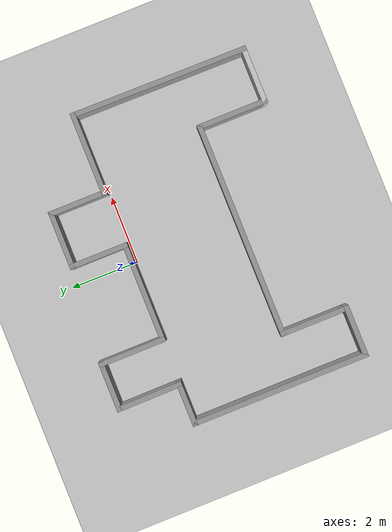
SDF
<sdf version="1.7">
 <world name="default">
  <light name="sun" type="directional">
   <pose>0 0 10 0 -0 0</pose>
   <diffuse>0.8 0.8 0.8 1</diffuse>
   <specular>0.2 0.2 0.2 1</specular>
   <attenuation>
    <range>1000</range>
    <constant>0.9</constant>
    <linear>0.01</linear>
    <quadratic>0.001</quadratic>
   </attenuation>
   <direction>-0.5 0.1 -0.9</direction>
   <spot><inner_angle>0</inner_angle><outer_angle>0</outer_angle><falloff>0</falloff></spot>
  </light>
  <model name="ground_plane">
   <static>1</static>
   <link name="link">
    <collision name="collision">
     <geometry><plane><normal>0 0 1</normal><size>100 100</size></plane></geometry>
     <surface>
      <contact><collide_bitmask>65535</collide_bitmask></contact>
      <friction><ode><mu>100</mu><mu2>50</mu2></ode></friction>
     </surface>
    </collision>
    <visual name="visual">
     <cast_shadows>0</cast_shadows>
     <geometry><plane><normal>0 0 1</normal><size>100 100</size></plane></geometry>
     <material>
      <script><uri>file://media/materials/scripts/gazebo.material</uri><name>Gazebo/Grey</name></script>
     </material>
    </visual>
   </link>
  </model>
  <gravity>0 0 -9.8</gravity>
  <magnetic_field>6e-06 2.3e-05 -4.2e-05</magnetic_field>
  <atmosphere type="adiabatic"/>
  <physics type="ode">
   <max_step_size>0.001</max_step_size>
   <real_time_factor>1</real_time_factor>
   <real_time_update_rate>1000</real_time_update_rate>
  </physics>
  <scene><ambient>0.4 0.4 0.4 1</ambient><background>0.7 0.7 0.7 1</background><shadows>1</shadows></scene>
  <spherical_coordinates>
   <surface_model>EARTH_WGS84</surface_model>
   <latitude_deg>0</latitude_deg>
   <longitude_deg>0</longitude_deg>
   <elevation>0</elevation>
   <heading_deg>0</heading_deg>
  </spherical_coordinates>
  <model name="hall_wide">
   <pose>-0.144197 -1.56134 0 0 -0 0</pose>
   <link name="Wall_0">
    <collision name="Wall_0_Collision">
     <geometry><box><size>1.32 0.15 0.5</size></box></geometry>
     <pose>0 0 0.25 0 -0 0</pose>
    </collision>
    <visual name="Wall_0_Visual">
     <pose>0 0 0.25 0 -0 0</pose>
     <geometry><box><size>1.32 0.15 0.5</size></box></geometry>
     <material>
      <script><uri>file://media/materials/scripts/gazebo.material</uri><name>Gazebo/Grey</name></script>
      <ambient>1 1 1 1</ambient>
     </material>
     <meta><layer>0</layer></meta>
    </visual>
    <pose>-4.0708 1.69334 0 0 -0 0</pose>
   </link>
   <link name="Wall_1">
    <collision name="Wall_1_Collision">
     <geometry><box><size>1.96502 0.15 0.5</size></box></geometry>
     <pose>0 0 0.25 0 -0 0</pose>
    </collision>
    <visual name="Wall_1_Visual">
     <pose>0 0 0.25 0 -0 0</pose>
     <geometry><box><size>1.96502 0.15 0.5</size></box></geometry>
     <material>
      <script><uri>file://media/materials/scripts/gazebo.material</uri><name>Gazebo/Grey</name></script>
      <ambient>1 1 1 1</ambient>
     </material>
     <meta><layer>0</layer></meta>
    </visual>
    <pose>-3.4903 2.60084 0 0 -0 1.57576</pose>
   </link>
   <link name="Wall_10">
    <collision name="Wall_10_Collision">
     <geometry><box><size>1.7415 0.15 0.5</size></box></geometry>
     <pose>0 0 0.25 0 -0 0</pose>
    </collision>
    <visual name="Wall_10_Visual">
     <pose>0 0 0.25 0 -0 0</pose>
     <geometry><box><size>1.7415 0.15 0.5</size></box></geometry>
     <material>
      <script><uri>file://media/materials/scripts/gazebo.material</uri><name>Gazebo/CeilingTiled</name></script>
      <ambient>1 1 1 1</ambient>
     </material>
     <meta><layer>0</layer></meta>
    </visual>
    <pose>3.8177 -3.50816 0 0 -0 -3.14096</pose>
   </link>
   <link name="Wall_11">
    <collision name="Wall_11_Collision">
     <geometry><box><size>2.121 0.15 0.5</size></box></geometry>
     <pose>0 0 0.25 0 -0 0</pose>
    </collision>
    <visual name="Wall_11_Visual">
     <pose>0 0 0.25 0 -0 0</pose>
     <geometry><box><size>2.121 0.15 0.5</size></box></geometry>
     <material>
      <script><uri>file://media/materials/scripts/gazebo.material</uri><name>Gazebo/Grey</name></script>
      <ambient>1 1 1 1</ambient>
     </material>
     <meta><layer>0</layer></meta>
    </visual>
    <pose>3.0222 -2.52316 0 0 -0 1.5708</pose>
   </link>
   <link name="Wall_12">
    <collision name="Wall_12_Collision">
     <geometry><box><size>6.418 0.15 0.5</size></box></geometry>
     <pose>0 0 0.25 0 -0 0</pose>
    </collision>
    <visual name="Wall_12_Visual">
     <pose>0 0 0.25 0 -0 0</pose>
     <geometry><box><size>6.418 0.15 0.5</size></box></geometry>
     <material>
      <script><uri>file://media/materials/scripts/gazebo.material</uri><name>Gazebo/Grey</name></script>
      <ambient>1 1 1 1</ambient>
     </material>
     <meta><layer>0</layer></meta>
    </visual>
    <pose>-0.111803 -1.53766 0 0 -0 3.14159</pose>
   </link>
   <link name="Wall_13">
    <collision name="Wall_13_Collision">
     <geometry><box><size>2.08 0.15 0.5</size></box></geometry>
     <pose>0 0 0.25 0 -0 0</pose>
    </collision>
    <visual name="Wall_13_Visual">
     <pose>0 0 0.25 0 -0 0</pose>
     <geometry><box><size>2.08 0.15 0.5</size></box></geometry>
     <material>
      <script><uri>file://media/materials/scripts/gazebo.material</uri><name>Gazebo/Grey</name></script>
      <ambient>1 1 1 1</ambient>
     </material>
     <meta><layer>0</layer></meta>
    </visual>
    <pose>-3.2458 -2.50266 0 0 -0 -1.5708</pose>
   </link>
   <link name="Wall_14">
    <collision name="Wall_14_Collision">
     <geometry><box><size>1.56 0.15 0.5</size></box></geometry>
     <pose>0 0 0.25 0 -0 0</pose>
    </collision>
    <visual name="Wall_14_Visual">
     <pose>0 0 0.25 0 -0 0</pose>
     <geometry><box><size>1.56 0.15 0.5</size></box></geometry>
     <material>
      <script><uri>file://media/materials/scripts/gazebo.material</uri><name>Gazebo/Grey</name></script>
      <ambient>1 1 1 1</ambient>
     </material>
     <meta><layer>0</layer></meta>
    </visual>
    <pose>-3.9508 -3.46766 0 0 -0 3.14159</pose>
   </link>
   <link name="Wall_15">
    <collision name="Wall_15_Collision">
     <geometry><box><size>5.25 0.15 0.5</size></box></geometry>
     <pose>0 0 0.25 0 -0 0</pose>
    </collision>
    <visual name="Wall_15_Visual">
     <pose>0 0 0.25 0 -0 0</pose>
     <geometry><box><size>5.25 0.15 0.5</size></box></geometry>
     <material>
      <script><uri>file://media/materials/scripts/gazebo.material</uri><name>Gazebo/Grey</name></script>
      <ambient>1 1 1 1</ambient>
     </material>
     <meta><layer>0</layer></meta>
    </visual>
    <pose>-4.6558 -0.917662 0 0 -0 1.5708</pose>
   </link>
   <link name="Wall_2">
    <collision name="Wall_2_Collision">
     <geometry><box><size>1.5 0.15 0.5</size></box></geometry>
     <pose>0 0 0.25 0 -0 0</pose>
    </collision>
    <visual name="Wall_2_Visual">
     <pose>0 0 0.25 0 -0 0</pose>
     <geometry><box><size>1.5 0.15 0.5</size></box></geometry>
     <material>
      <script><uri>file://media/materials/scripts/gazebo.material</uri><name>Gazebo/Grey</name></script>
      <ambient>1 1 1 1</ambient>
     </material>
     <meta><layer>0</layer></meta>
    </visual>
    <pose>-2.8198 3.50834 0 0 -0 0</pose>
   </link>
   <link name="Wall_3">
    <collision name="Wall_3_Collision">
     <geometry><box><size>2 0.15 0.5</size></box></geometry>
     <pose>0 0 0.25 0 -0 0</pose>
    </collision>
    <visual name="Wall_3_Visual">
     <pose>0 0 0.25 0 -0 0</pose>
     <geometry><box><size>2 0.15 0.5</size></box></geometry>
     <material>
      <script><uri>file://media/materials/scripts/gazebo.material</uri><name>Gazebo/Grey</name></script>
      <ambient>1 1 1 1</ambient>
     </material>
     <meta><layer>0</layer></meta>
    </visual>
    <pose>-2.1448 2.58334 0 0 -0 -1.5708</pose>
   </link>
   <link name="Wall_4">
    <collision name="Wall_4_Collision">
     <geometry><box><size>3 0.15 0.5</size></box></geometry>
     <pose>0 0 0.25 0 -0 0</pose>
    </collision>
    <visual name="Wall_4_Visual">
     <pose>0 0 0.25 0 -0 0</pose>
     <geometry><box><size>3 0.15 0.5</size></box></geometry>
     <material>
      <script><uri>file://media/materials/scripts/gazebo.material</uri><name>Gazebo/Grey</name></script>
      <ambient>1 1 1 1</ambient>
     </material>
     <meta><layer>0</layer></meta>
    </visual>
    <pose>-0.719803 1.65834 0 0 -0 0</pose>
   </link>
   <link name="Wall_5">
    <collision name="Wall_5_Collision">
     <geometry><box><size>1.75 0.15 0.5</size></box></geometry>
     <pose>0 0 0.25 0 -0 0</pose>
    </collision>
    <visual name="Wall_5_Visual">
     <pose>0 0 0.25 0 -0 0</pose>
     <geometry><box><size>1.75 0.15 0.5</size></box></geometry>
     <material>
      <script><uri>file://media/materials/scripts/gazebo.material</uri><name>Gazebo/Grey</name></script>
      <ambient>1 1 1 1</ambient>
     </material>
     <meta><layer>0</layer></meta>
    </visual>
    <pose>0.705197 2.45834 0 0 -0 1.5708</pose>
   </link>
   <link name="Wall_6">
    <collision name="Wall_6_Collision">
     <geometry><box><size>1.75 0.15 0.5</size></box></geometry>
     <pose>0 0 0.25 0 -0 0</pose>
    </collision>
    <visual name="Wall_6_Visual">
     <pose>0 0 0.25 0 -0 0</pose>
     <geometry><box><size>1.75 0.15 0.5</size></box></geometry>
     <material>
      <script><uri>file://media/materials/scripts/gazebo.material</uri><name>Gazebo/Grey</name></script>
      <ambient>1 1 1 1</ambient>
     </material>
     <meta><layer>0</layer></meta>
    </visual>
    <pose>1.5052 3.25834 0 0 -0 0</pose>
   </link>
   <link name="Wall_7">
    <collision name="Wall_7_Collision">
     <geometry><box><size>1.75 0.15 0.5</size></box></geometry>
     <pose>0 0 0.25 0 -0 0</pose>
    </collision>
    <visual name="Wall_7_Visual">
     <pose>0 0 0.25 0 -0 0</pose>
     <geometry><box><size>1.75 0.15 0.5</size></box></geometry>
     <material>
      <script><uri>file://media/materials/scripts/gazebo.material</uri><name>Gazebo/Grey</name></script>
      <ambient>1 1 1 1</ambient>
     </material>
     <meta><layer>0</layer></meta>
    </visual>
    <pose>2.3052 2.45834 0 0 -0 -1.5708</pose>
   </link>
   <link name="Wall_8">
    <collision name="Wall_8_Collision">
     <geometry><box><size>2.5 0.15 0.5</size></box></geometry>
     <pose>0 0 0.25 0 -0 0</pose>
    </collision>
    <visual name="Wall_8_Visual">
     <pose>0 0 0.25 0 -0 0</pose>
     <geometry><box><size>2.5 0.15 0.5</size></box></geometry>
     <material>
      <script><uri>file://media/materials/scripts/gazebo.material</uri><name>Gazebo/Grey</name></script>
      <ambient>1 1 1 1</ambient>
     </material>
     <meta><layer>0</layer></meta>
    </visual>
    <pose>3.4802 1.65834 0 0 -0 0</pose>
   </link>
   <link name="Wall_9">
    <collision name="Wall_9_Collision">
     <geometry><box><size>5.31617 0.15 0.5</size></box></geometry>
     <pose>0 0 0.25 0 -0 0</pose>
    </collision>
    <visual name="Wall_9_Visual">
     <pose>0 0 0.25 0 -0 0</pose>
     <geometry><box><size>5.31617 0.15 0.5</size></box></geometry>
     <material>
      <script><uri>file://media/materials/scripts/gazebo.material</uri><name>Gazebo/Grey</name></script>
      <ambient>1 1 1 1</ambient>
     </material>
     <meta><layer>0</layer></meta>
    </visual>
    <pose>4.6342 -0.924662 0 0 -0 -1.57893</pose>
   </link>
   <static>1</static>
  </model>
 </world>
</sdf>
